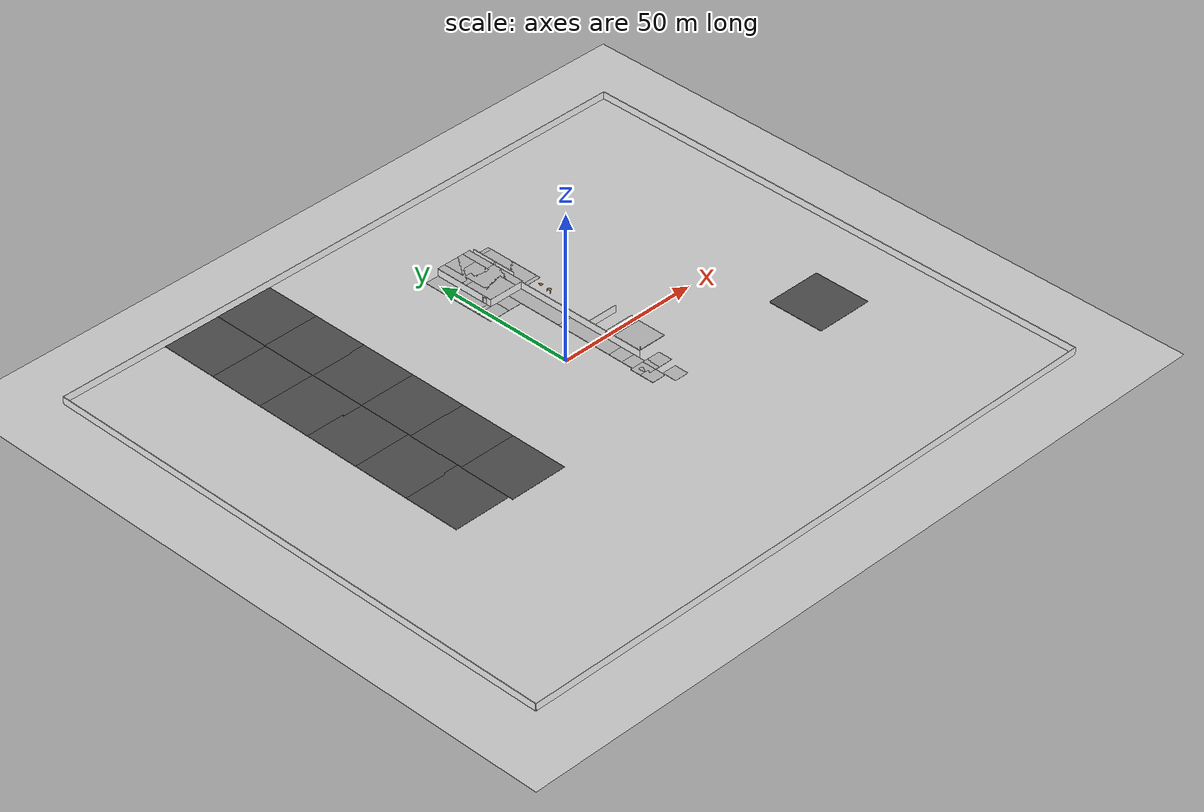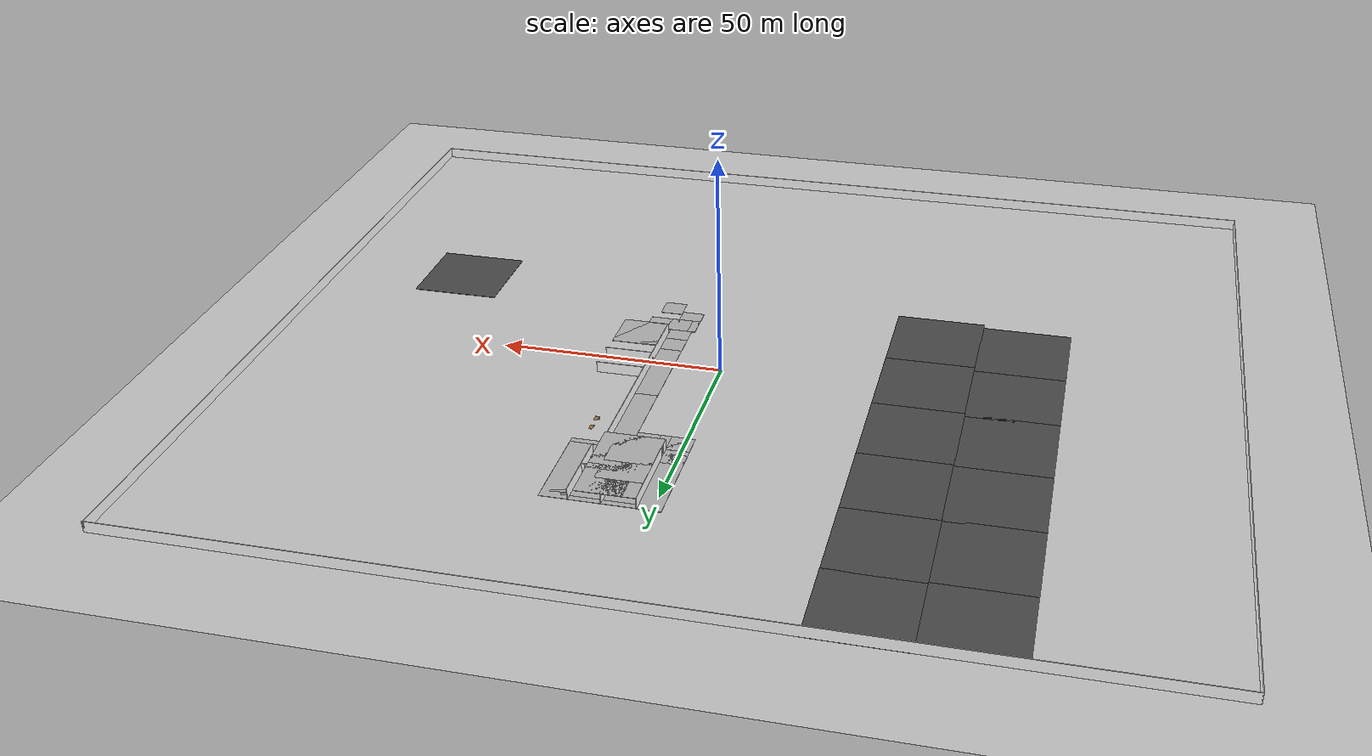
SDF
<sdf version="1.6">
 <world name="default">
  <model name="borders_0">
   <pose>-4.565 -7.31339 0 0 -0 0</pose>
   <link name="Wall_60">
    <collision name="Wall_60_Collision">
     <geometry><box><size>185.25 0.15 2.5</size></box></geometry>
     <pose>0 0 1.25 0 -0 0</pose>
    </collision>
    <visual name="Wall_60_Visual">
     <pose>0 0 1.25 0 -0 0</pose>
     <geometry><box><size>185.25 0.15 2.5</size></box></geometry>
     <material>
      <script>
       <uri>model://office_env/materials/scripts</uri>
       <uri>model://office_env/materials/textures</uri>
       <name>wall</name>
      </script>
      <ambient>1 1 1 1</ambient>
     </material>
    </visual>
    <pose>107.175 0 0 0 0 -1.5708</pose>
   </link>
   <link name="Wall_61">
    <collision name="Wall_61_Collision">
     <geometry><box><size>214.75 0.15 2.5</size></box></geometry>
     <pose>0 0 1.25 0 -0 0</pose>
    </collision>
    <visual name="Wall_61_Visual">
     <pose>0 0 1.25 0 -0 0</pose>
     <geometry><box><size>214.75 0.15 2.5</size></box></geometry>
     <material>
      <script>
       <uri>model://office_env/materials/scripts</uri>
       <uri>model://office_env/materials/textures</uri>
       <name>wall</name>
      </script>
      <ambient>1 1 1 1</ambient>
     </material>
    </visual>
    <pose>-0.124995 -92.55 0 0 -0 3.14159</pose>
   </link>
   <link name="Wall_62">
    <collision name="Wall_62_Collision">
     <geometry><box><size>185.25 0.15 2.5</size></box></geometry>
     <pose>0 0 1.25 0 -0 0</pose>
    </collision>
    <visual name="Wall_62_Visual">
     <pose>0 0 1.25 0 -0 0</pose>
     <geometry><box><size>185.25 0.15 2.5</size></box></geometry>
     <material>
      <script>
       <uri>model://office_env/materials/scripts</uri>
       <uri>model://office_env/materials/textures</uri>
       <name>wall</name>
      </script>
      <ambient>1 1 1 1</ambient>
     </material>
    </visual>
    <pose>-107.425 0 0 0 -0 1.5708</pose>
   </link>
   <link name="Wall_64">
    <collision name="Wall_64_Collision">
     <geometry><box><size>215 0.15 2.5</size></box></geometry>
     <pose>0 0 1.25 0 -0 0</pose>
    </collision>
    <visual name="Wall_64_Visual">
     <pose>0 0 1.25 0 -0 0</pose>
     <geometry><box><size>215 0.15 2.5</size></box></geometry>
     <material>
      <script>
       <uri>model://office_env/materials/scripts</uri>
       <uri>model://office_env/materials/textures</uri>
       <name>wall</name>
      </script>
      <ambient>1 1 1 1</ambient>
     </material>
    </visual>
    <pose>5e-06 92.55 0 0 -0 0</pose>
   </link>
   <static>1</static>
  </model>
  <model name="mainoffice">
   <pose>42.7555 15.4488 0 0 -0 0</pose>
   <link name="Wall_125">
    <collision name="Wall_125_Collision">
     <geometry><box><size>4.25 0.15 2.5</size></box></geometry>
     <pose>0 0 1.25 0 -0 0</pose>
    </collision>
    <visual name="Wall_125_Visual">
     <pose>0 0 1.25 0 -0 0</pose>
     <geometry><box><size>4.25 0.15 2.5</size></box></geometry>
     <material>
      <script>
       <uri>model://office_env/materials/scripts</uri>
       <uri>model://office_env/materials/textures</uri>
       <name>wall</name>
      </script>
      <ambient>1 1 1 1</ambient>
     </material>
    </visual>
    <pose>-30.1665 27.2379 0 0 -0 3.14159</pose>
   </link>
   <link name="Wall_126">
    <pose>-32.2165 33.1629 0 0 -0 1.5708</pose>
    <visual name="Wall_126_Visual_0">
     <pose>-5.66049 0 1.25 0 -0 0</pose>
     <geometry><box><size>0.679016 0.15 2.5</size></box></geometry>
     <material>
      <script>
       <uri>model://office_env/materials/scripts</uri>
       <uri>model://office_env/materials/textures</uri>
       <name>wall</name>
      </script>
      <ambient>1 1 1 1</ambient>
     </material>
    </visual>
    <collision name="Wall_126_Collision_0">
     <geometry><box><size>0.679016 0.15 2.5</size></box></geometry>
     <pose>-5.66049 0 1.25 0 -0 0</pose>
    </collision>
    <visual name="Wall_126_Visual_1">
     <pose>1.08951 0 1.25 0 -0 0</pose>
     <geometry><box><size>9.82098 0.15 2.5</size></box></geometry>
     <material>
      <script>
       <uri>model://office_env/materials/scripts</uri>
       <uri>model://office_env/materials/textures</uri>
       <name>wall</name>
      </script>
      <ambient>1 1 1 1</ambient>
     </material>
    </visual>
    <collision name="Wall_126_Collision_1">
     <geometry><box><size>9.82098 0.15 2.5</size></box></geometry>
     <pose>1.08951 0 1.25 0 -0 0</pose>
    </collision>
    <visual name="Wall_126_Visual_2">
     <pose>-4.57098 0 2.25 0 -0 0</pose>
     <geometry><box><size>1.5 0.15 0.5</size></box></geometry>
     <material>
      <script>
       <uri>model://office_env/materials/scripts</uri>
       <uri>model://office_env/materials/textures</uri>
       <name>wall</name>
      </script>
      <ambient>1 1 1 1</ambient>
     </material>
    </visual>
    <collision name="Wall_126_Collision_2">
     <geometry><box><size>1.5 0.15 0.5</size></box></geometry>
     <pose>-4.57098 0 2.25 0 -0 0</pose>
    </collision>
   </link>
   <link name="Wall_128">
    <collision name="Wall_128_Collision">
     <geometry><box><size>0.25 0.15 2.5</size></box></geometry>
     <pose>0 0 1.25 0 -0 0</pose>
    </collision>
    <visual name="Wall_128_Visual">
     <pose>0 0 1.25 0 -0 0</pose>
     <geometry><box><size>0.25 0.15 2.5</size></box></geometry>
     <material>
      <script>
       <uri>model://office_env/materials/scripts</uri>
       <uri>model://office_env/materials/textures</uri>
       <name>wall</name>
      </script>
      <ambient>1 1 1 1</ambient>
     </material>
    </visual>
    <pose>-32.2165 39.1379 0 0 -0 1.5708</pose>
   </link>
   <link name="Wall_130">
    <pose>-28.8573 30.0928 0 0 -0 0</pose>
    <visual name="Wall_130_Visual_0">
     <pose>-1.12067 0 1.25 0 -0 0</pose>
     <geometry><box><size>4.75866 0.15 2.5</size></box></geometry>
     <material>
      <script>
       <uri>model://office_env/materials/scripts</uri>
       <uri>model://office_env/materials/textures</uri>
       <name>wall</name>
      </script>
      <ambient>1 1 1 1</ambient>
     </material>
    </visual>
    <collision name="Wall_130_Collision_0">
     <geometry><box><size>4.75866 0.15 2.5</size></box></geometry>
     <pose>-1.12067 0 1.25 0 -0 0</pose>
    </collision>
    <visual name="Wall_130_Visual_1">
     <pose>3.12933 0 1.25 0 -0 0</pose>
     <geometry><box><size>0.741337 0.15 2.5</size></box></geometry>
     <material>
      <script>
       <uri>model://office_env/materials/scripts</uri>
       <uri>model://office_env/materials/textures</uri>
       <name>wall</name>
      </script>
      <ambient>1 1 1 1</ambient>
     </material>
    </visual>
    <collision name="Wall_130_Collision_1">
     <geometry><box><size>0.741337 0.15 2.5</size></box></geometry>
     <pose>3.12933 0 1.25 0 -0 0</pose>
    </collision>
    <visual name="Wall_130_Visual_2">
     <pose>2.00866 0 2.25 0 -0 0</pose>
     <geometry><box><size>1.5 0.15 0.5</size></box></geometry>
     <material>
      <script>
       <uri>model://office_env/materials/scripts</uri>
       <uri>model://office_env/materials/textures</uri>
       <name>wall</name>
      </script>
      <ambient>1 1 1 1</ambient>
     </material>
    </visual>
    <collision name="Wall_130_Collision_2">
     <geometry><box><size>1.5 0.15 0.5</size></box></geometry>
     <pose>2.00866 0 2.25 0 -0 0</pose>
    </collision>
   </link>
   <link name="Wall_131">
    <collision name="Wall_131_Collision">
     <geometry><box><size>7.5 0.15 2.5</size></box></geometry>
     <pose>0 0 1.25 0 -0 0</pose>
    </collision>
    <visual name="Wall_131_Visual">
     <pose>0 0 1.25 0 -0 0</pose>
     <geometry><box><size>7.5 0.15 2.5</size></box></geometry>
     <material>
      <script>
       <uri>model://office_env/materials/scripts</uri>
       <uri>model://office_env/materials/textures</uri>
       <name>wall</name>
      </script>
      <ambient>1 1 1 1</ambient>
     </material>
    </visual>
    <pose>-25.4323 26.4178 0 0 0 -1.5708</pose>
   </link>
   <link name="Wall_133">
    <collision name="Wall_133_Collision">
     <geometry><box><size>4.75 0.15 2.5</size></box></geometry>
     <pose>0 0 1.25 0 -0 0</pose>
    </collision>
    <visual name="Wall_133_Visual">
     <pose>0 0 1.25 0 -0 0</pose>
     <geometry><box><size>4.75 0.15 2.5</size></box></geometry>
     <material>
      <script>
       <uri>model://office_env/materials/scripts</uri>
       <uri>model://office_env/materials/textures</uri>
       <name>wall</name>
      </script>
      <ambient>1 1 1 1</ambient>
     </material>
    </visual>
    <pose>-28.1164 24.9379 0 0 0 -1.5708</pose>
   </link>
   <link name="Wall_135">
    <collision name="Wall_135_Collision">
     <geometry><box><size>9.25 0.15 2.5</size></box></geometry>
     <pose>0 0 1.25 0 -0 0</pose>
    </collision>
    <visual name="Wall_135_Visual">
     <pose>0 0 1.25 0 -0 0</pose>
     <geometry><box><size>9.25 0.15 2.5</size></box></geometry>
     <material>
      <script>
       <uri>model://office_env/materials/scripts</uri>
       <uri>model://office_env/materials/textures</uri>
       <name>wall</name>
      </script>
      <ambient>1 1 1 1</ambient>
     </material>
    </visual>
    <pose>-25.4323 34.6428 0 0 -0 1.5708</pose>
   </link>
   <link name="Wall_35">
    <collision name="Wall_35_Collision">
     <geometry><box><size>47.25 0.15 2.5</size></box></geometry>
     <pose>0 0 1.25 0 -0 0</pose>
    </collision>
    <visual name="Wall_35_Visual">
     <pose>0 0 1.25 0 -0 0</pose>
     <geometry><box><size>47.25 0.15 2.5</size></box></geometry>
     <material>
      <script>
       <uri>model://office_env/materials/scripts</uri>
       <uri>model://office_env/materials/textures</uri>
       <name>wall</name>
      </script>
      <ambient>1 1 1 1</ambient>
     </material>
    </visual>
    <pose>-27.0991 -5.575 0 0 -0 1.5708</pose>
   </link>
   <link name="Wall_36">
    <collision name="Wall_36_Collision">
     <geometry><box><size>12.5 0.15 2.5</size></box></geometry>
     <pose>0 0 1.25 0 -0 0</pose>
    </collision>
    <visual name="Wall_36_Visual">
     <pose>0 0 1.25 0 -0 0</pose>
     <geometry><box><size>12.5 0.15 2.5</size></box></geometry>
     <material>
      <script>
       <uri>model://office_env/materials/scripts</uri>
       <uri>model://office_env/materials/textures</uri>
       <name>wall</name>
      </script>
      <ambient>1 1 1 1</ambient>
     </material>
    </visual>
    <pose>-33.2741 17.975 0 0 -0 3.14159</pose>
   </link>
   <link name="Wall_37">
    <pose>-39.4491 28.65 0 0 -0 1.5708</pose>
    <visual name="Wall_37_Visual_0">
     <pose>-9.83172 0 1.25 0 -0 0</pose>
     <geometry><box><size>1.83655 0.15 2.5</size></box></geometry>
     <material>
      <script>
       <uri>model://office_env/materials/scripts</uri>
       <uri>model://office_env/materials/textures</uri>
       <name>wall</name>
      </script>
      <ambient>1 1 1 1</ambient>
     </material>
    </visual>
    <collision name="Wall_37_Collision_0">
     <geometry><box><size>1.83655 0.15 2.5</size></box></geometry>
     <pose>-9.83172 0 1.25 0 -0 0</pose>
    </collision>
    <visual name="Wall_37_Visual_1">
     <pose>1.66828 0 1.25 0 -0 0</pose>
     <geometry><box><size>18.1634 0.15 2.5</size></box></geometry>
     <material>
      <script>
       <uri>model://office_env/materials/scripts</uri>
       <uri>model://office_env/materials/textures</uri>
       <name>wall</name>
      </script>
      <ambient>1 1 1 1</ambient>
     </material>
    </visual>
    <collision name="Wall_37_Collision_1">
     <geometry><box><size>18.1634 0.15 2.5</size></box></geometry>
     <pose>1.66828 0 1.25 0 -0 0</pose>
    </collision>
    <visual name="Wall_37_Visual_2">
     <pose>-8.16345 0 2.25 0 -0 0</pose>
     <geometry><box><size>1.5 0.15 0.5</size></box></geometry>
     <material>
      <script>
       <uri>model://office_env/materials/scripts</uri>
       <uri>model://office_env/materials/textures</uri>
       <name>wall</name>
      </script>
      <ambient>1 1 1 1</ambient>
     </material>
    </visual>
    <collision name="Wall_37_Collision_2">
     <geometry><box><size>1.5 0.15 0.5</size></box></geometry>
     <pose>-8.16345 0 2.25 0 -0 0</pose>
    </collision>
   </link>
   <link name="Wall_69">
    <collision name="Wall_69_Collision">
     <geometry><box><size>10.75 0.15 2.5</size></box></geometry>
     <pose>0 0 1.25 0 -0 0</pose>
    </collision>
    <visual name="Wall_69_Visual">
     <pose>0 0 1.25 0 -0 0</pose>
     <geometry><box><size>10.75 0.15 2.5</size></box></geometry>
     <material>
      <script>
       <uri>model://office_env/materials/scripts</uri>
       <uri>model://office_env/materials/textures</uri>
       <name>wall</name>
      </script>
      <ambient>1 1 1 1</ambient>
     </material>
    </visual>
    <pose>-21.8396 -15.8176 0 0 -0 3.14159</pose>
   </link>
   <link name="Wall_71">
    <collision name="Wall_71_Collision">
     <geometry><box><size>10.75 0.15 2.5</size></box></geometry>
     <pose>0 0 1.25 0 -0 0</pose>
    </collision>
    <visual name="Wall_71_Visual">
     <pose>0 0 1.25 0 -0 0</pose>
     <geometry><box><size>10.75 0.15 2.5</size></box></geometry>
     <material>
      <script>
       <uri>model://office_env/materials/scripts</uri>
       <uri>model://office_env/materials/textures</uri>
       <name>wall</name>
      </script>
      <ambient>1 1 1 1</ambient>
     </material>
    </visual>
    <pose>-21.7518 -9.17769 0 0 -0 3.14159</pose>
   </link>
   <static>1</static>
  </model>
  <model name="asphalt_plane_0">
   <static>1</static>
   <link name="link">
    <collision name="collision"><geometry><box><size>20 20 0.1</size></box></geometry></collision>
    <visual name="visual">
     <cast_shadows>0</cast_shadows>
     <geometry><box><size>20 20 0.1</size></box></geometry>
     <material>
      <script>
       <uri>model://asphalt_plane/materials/scripts</uri>
       <uri>model://asphalt_plane/materials/textures</uri>
       <name>vrc/asphalt</name>
      </script>
     </material>
    </visual>
   </link>
   <pose>-64.5165 75.1071 0 0 -0 0</pose>
  </model>
  <model name="asphalt_plane_1">
   <static>1</static>
   <link name="link">
    <collision name="collision"><geometry><box><size>20 20 0.1</size></box></geometry></collision>
    <visual name="visual">
     <cast_shadows>0</cast_shadows>
     <geometry><box><size>20 20 0.1</size></box></geometry>
     <material>
      <script>
       <uri>model://asphalt_plane/materials/scripts</uri>
       <uri>model://asphalt_plane/materials/textures</uri>
       <name>vrc/asphalt</name>
      </script>
     </material>
    </visual>
   </link>
   <pose>-64.552 55.1303 0 0 -0 0</pose>
  </model>
  <model name="asphalt_plane_2">
   <static>1</static>
   <link name="link">
    <collision name="collision"><geometry><box><size>20 20 0.1</size></box></geometry></collision>
    <visual name="visual">
     <cast_shadows>0</cast_shadows>
     <geometry><box><size>20 20 0.1</size></box></geometry>
     <material>
      <script>
       <uri>model://asphalt_plane/materials/scripts</uri>
       <uri>model://asphalt_plane/materials/textures</uri>
       <name>vrc/asphalt</name>
      </script>
     </material>
    </visual>
   </link>
   <pose>-64.5299 35.7195 0 0 -0 0</pose>
  </model>
  <model name="asphalt_plane_3">
   <static>1</static>
   <link name="link">
    <collision name="collision"><geometry><box><size>20 20 0.1</size></box></geometry></collision>
    <visual name="visual">
     <cast_shadows>0</cast_shadows>
     <geometry><box><size>20 20 0.1</size></box></geometry>
     <material>
      <script>
       <uri>model://asphalt_plane/materials/scripts</uri>
       <uri>model://asphalt_plane/materials/textures</uri>
       <name>vrc/asphalt</name>
      </script>
     </material>
    </visual>
   </link>
   <pose>-64.5166 16.3108 0 0 -0 0</pose>
  </model>
  <model name="asphalt_plane_4">
   <static>1</static>
   <link name="link">
    <collision name="collision"><geometry><box><size>20 20 0.1</size></box></geometry></collision>
    <visual name="visual">
     <cast_shadows>0</cast_shadows>
     <geometry><box><size>20 20 0.1</size></box></geometry>
     <material>
      <script>
       <uri>model://asphalt_plane/materials/scripts</uri>
       <uri>model://asphalt_plane/materials/textures</uri>
       <name>vrc/asphalt</name>
      </script>
     </material>
    </visual>
   </link>
   <pose>-64.5183 -2.94145 0 0 -0 0</pose>
  </model>
  <model name="asphalt_plane_5">
   <static>1</static>
   <link name="link">
    <collision name="collision"><geometry><box><size>20 20 0.1</size></box></geometry></collision>
    <visual name="visual">
     <cast_shadows>0</cast_shadows>
     <geometry><box><size>20 20 0.1</size></box></geometry>
     <material>
      <script>
       <uri>model://asphalt_plane/materials/scripts</uri>
       <uri>model://asphalt_plane/materials/textures</uri>
       <name>vrc/asphalt</name>
      </script>
     </material>
    </visual>
   </link>
   <pose>-64.5294 -22.3652 0 0 -0 0</pose>
  </model>
  <model name="asphalt_plane_7">
   <static>1</static>
   <link name="link">
    <collision name="collision"><geometry><box><size>20 20 0.1</size></box></geometry></collision>
    <visual name="visual">
     <cast_shadows>0</cast_shadows>
     <geometry><box><size>20 20 0.1</size></box></geometry>
     <material>
      <script>
       <uri>model://asphalt_plane/materials/scripts</uri>
       <uri>model://asphalt_plane/materials/textures</uri>
       <name>vrc/asphalt</name>
      </script>
     </material>
    </visual>
   </link>
   <pose>-44.6095 75.2915 0 0 -0 0</pose>
  </model>
  <model name="asphalt_plane_8">
   <static>1</static>
   <link name="link">
    <collision name="collision"><geometry><box><size>20 20 0.1</size></box></geometry></collision>
    <visual name="visual">
     <cast_shadows>0</cast_shadows>
     <geometry><box><size>20 20 0.1</size></box></geometry>
     <material>
      <script>
       <uri>model://asphalt_plane/materials/scripts</uri>
       <uri>model://asphalt_plane/materials/textures</uri>
       <name>vrc/asphalt</name>
      </script>
     </material>
    </visual>
   </link>
   <pose>-44.6396 55.5127 0 0 -0 0</pose>
  </model>
  <model name="asphalt_plane_9">
   <static>1</static>
   <link name="link">
    <collision name="collision"><geometry><box><size>20 20 0.1</size></box></geometry></collision>
    <visual name="visual">
     <cast_shadows>0</cast_shadows>
     <geometry><box><size>20 20 0.1</size></box></geometry>
     <material>
      <script>
       <uri>model://asphalt_plane/materials/scripts</uri>
       <uri>model://asphalt_plane/materials/textures</uri>
       <name>vrc/asphalt</name>
      </script>
     </material>
    </visual>
   </link>
   <pose>-44.6546 35.8741 0 0 -0 0</pose>
  </model>
  <model name="asphalt_plane_10">
   <static>1</static>
   <link name="link">
    <collision name="collision"><geometry><box><size>20 20 0.1</size></box></geometry></collision>
    <visual name="visual">
     <cast_shadows>0</cast_shadows>
     <geometry><box><size>20 20 0.1</size></box></geometry>
     <material>
      <script>
       <uri>model://asphalt_plane/materials/scripts</uri>
       <uri>model://asphalt_plane/materials/textures</uri>
       <name>vrc/asphalt</name>
      </script>
     </material>
    </visual>
   </link>
   <pose>-44.653 15.9007 0 0 -0 0</pose>
  </model>
  <model name="asphalt_plane_11">
   <static>1</static>
   <link name="link">
    <collision name="collision"><geometry><box><size>20 20 0.1</size></box></geometry></collision>
    <visual name="visual">
     <cast_shadows>0</cast_shadows>
     <geometry><box><size>20 20 0.1</size></box></geometry>
     <material>
      <script>
       <uri>model://asphalt_plane/materials/scripts</uri>
       <uri>model://asphalt_plane/materials/textures</uri>
       <name>vrc/asphalt</name>
      </script>
     </material>
    </visual>
   </link>
   <pose>-44.6674 -3.87186 0 0 -0 0</pose>
  </model>
  <model name="asphalt_plane_12">
   <static>1</static>
   <link name="link">
    <collision name="collision"><geometry><box><size>20 20 0.1</size></box></geometry></collision>
    <visual name="visual">
     <cast_shadows>0</cast_shadows>
     <geometry><box><size>20 20 0.1</size></box></geometry>
     <material>
      <script>
       <uri>model://asphalt_plane/materials/scripts</uri>
       <uri>model://asphalt_plane/materials/textures</uri>
       <name>vrc/asphalt</name>
      </script>
     </material>
    </visual>
   </link>
   <pose>-44.6971 -23.8447 0 0 -0 0</pose>
  </model>
  <model name="asphalt_plane">
   <static>1</static>
   <link name="link">
    <collision name="collision"><geometry><box><size>20 20 0.1</size></box></geometry></collision>
    <visual name="visual">
     <cast_shadows>0</cast_shadows>
     <geometry><box><size>20 20 0.1</size></box></geometry>
     <material>
      <script>
       <uri>model://asphalt_plane/materials/scripts</uri>
       <uri>model://asphalt_plane/materials/textures</uri>
       <name>vrc/asphalt</name>
      </script>
     </material>
    </visual>
   </link>
   <pose>70.7475 -31.5972 0 0 -0 0</pose>
  </model>
  <model name="table">
   <static>0</static>
   <link name="link">
    <collision name="surface">
     <pose>0 0 1 0 -0 0</pose>
     <geometry><box><size>1.5 0.8 0.03</size></box></geometry>
     <surface><friction><ode><mu>0.6</mu><mu2>0.6</mu2></ode></friction></surface>
    </collision>
    <visual name="visual1">
     <pose>0 0 1 0 -0 0</pose>
     <geometry><box><size>1.4 0.8 0.04</size></box></geometry>
     <material>
      <script><uri>file://media/materials/scripts/gazebo.material</uri><name>Gazebo/Wood</name></script>
     </material>
    </visual>
    <collision name="front_left_leg">
     <pose>0.68 0.38 0.5 0 -0 0</pose>
     <geometry><cylinder><radius>0.02</radius><length>1</length></cylinder></geometry>
    </collision>
    <visual name="front_left_leg">
     <pose>0.68 0.38 0.5 0 -0 0</pose>
     <geometry><cylinder><radius>0.02</radius><length>1</length></cylinder></geometry>
     <material>
      <script>
       <uri>model://office_env/materials/scripts</uri>
       <uri>model://office_env/materials/textures</uri>
       <name>wall</name>
      </script>
     </material>
    </visual>
    <collision name="front_right_leg">
     <pose>0.68 -0.38 0.5 0 -0 0</pose>
     <geometry><cylinder><radius>0.02</radius><length>1</length></cylinder></geometry>
    </collision>
    <visual name="front_right_leg">
     <pose>0.68 -0.38 0.5 0 -0 0</pose>
     <geometry><cylinder><radius>0.02</radius><length>1</length></cylinder></geometry>
     <material>
      <script>
       <uri>model://office_env/materials/scripts</uri>
       <uri>model://office_env/materials/textures</uri>
       <name>wall</name>
      </script>
     </material>
    </visual>
    <collision name="back_right_leg">
     <pose>-0.68 -0.38 0.5 0 -0 0</pose>
     <geometry><cylinder><radius>0.02</radius><length>1</length></cylinder></geometry>
    </collision>
    <visual name="back_right_leg">
     <pose>-0.68 -0.38 0.5 0 -0 0</pose>
     <geometry><cylinder><radius>0.02</radius><length>1</length></cylinder></geometry>
     <material>
      <script>
       <uri>model://office_env/materials/scripts</uri>
       <uri>model://office_env/materials/textures</uri>
       <name>wall</name>
      </script>
     </material>
    </visual>
    <collision name="back_left_leg">
     <pose>-0.68 0.38 0.5 0 -0 0</pose>
     <geometry><cylinder><radius>0.02</radius><length>1</length></cylinder></geometry>
    </collision>
    <visual name="back_left_leg">
     <pose>-0.68 0.38 0.5 0 -0 0</pose>
     <geometry><cylinder><radius>0.02</radius><length>1</length></cylinder></geometry>
     <material>
      <script>
       <uri>model://office_env/materials/scripts</uri>
       <uri>model://office_env/materials/textures</uri>
       <name>wall</name>
      </script>
     </material>
    </visual>
    <inertial>
     <inertia><ixx>1</ixx><ixy>0</ixy><ixz>0</ixz><iyy>1</iyy><iyz>0</iyz><izz>1</izz></inertia>
     <mass>1</mass>
    </inertial>
   </link>
   <pose>6.75899 49.9498 0.034999 0 -0 0</pose>
  </model>
  <model name="table_3">
   <static>0</static>
   <link name="link">
    <collision name="surface">
     <pose>0 0 1 0 -0 0</pose>
     <geometry><box><size>1.5 0.8 0.03</size></box></geometry>
     <surface><friction><ode><mu>0.6</mu><mu2>0.6</mu2></ode></friction></surface>
    </collision>
    <visual name="visual1">
     <pose>0 0 1 0 -0 0</pose>
     <geometry><box><size>1.4 0.8 0.04</size></box></geometry>
     <material>
      <script><uri>file://media/materials/scripts/gazebo.material</uri><name>Gazebo/Wood</name></script>
     </material>
    </visual>
    <collision name="front_left_leg">
     <pose>0.68 0.38 0.5 0 -0 0</pose>
     <geometry><cylinder><radius>0.02</radius><length>1</length></cylinder></geometry>
    </collision>
    <visual name="front_left_leg">
     <pose>0.68 0.38 0.5 0 -0 0</pose>
     <geometry><cylinder><radius>0.02</radius><length>1</length></cylinder></geometry>
     <material>
      <script>
       <uri>model://office_env/materials/scripts</uri>
       <uri>model://office_env/materials/textures</uri>
       <name>wall</name>
      </script>
     </material>
    </visual>
    <collision name="front_right_leg">
     <pose>0.68 -0.38 0.5 0 -0 0</pose>
     <geometry><cylinder><radius>0.02</radius><length>1</length></cylinder></geometry>
    </collision>
    <visual name="front_right_leg">
     <pose>0.68 -0.38 0.5 0 -0 0</pose>
     <geometry><cylinder><radius>0.02</radius><length>1</length></cylinder></geometry>
     <material>
      <script>
       <uri>model://office_env/materials/scripts</uri>
       <uri>model://office_env/materials/textures</uri>
       <name>wall</name>
      </script>
     </material>
    </visual>
    <collision name="back_right_leg">
     <pose>-0.68 -0.38 0.5 0 -0 0</pose>
     <geometry><cylinder><radius>0.02</radius><length>1</length></cylinder></geometry>
    </collision>
    <visual name="back_right_leg">
     <pose>-0.68 -0.38 0.5 0 -0 0</pose>
     <geometry><cylinder><radius>0.02</radius><length>1</length></cylinder></geometry>
     <material>
      <script>
       <uri>model://office_env/materials/scripts</uri>
       <uri>model://office_env/materials/textures</uri>
       <name>wall</name>
      </script>
     </material>
    </visual>
    <collision name="back_left_leg">
     <pose>-0.68 0.38 0.5 0 -0 0</pose>
     <geometry><cylinder><radius>0.02</radius><length>1</length></cylinder></geometry>
    </collision>
    <visual name="back_left_leg">
     <pose>-0.68 0.38 0.5 0 -0 0</pose>
     <geometry><cylinder><radius>0.02</radius><length>1</length></cylinder></geometry>
     <material>
      <script>
       <uri>model://office_env/materials/scripts</uri>
       <uri>model://office_env/materials/textures</uri>
       <name>wall</name>
      </script>
     </material>
    </visual>
    <inertial>
     <inertia><ixx>1</ixx><ixy>0</ixy><ixz>0</ixz><iyy>1</iyy><iyz>0</iyz><izz>1</izz></inertia>
     <mass>1</mass>
    </inertial>
   </link>
   <pose>20.1295 30.0365 0.034999 0 0 -1.58064</pose>
  </model>
  <model name="table_3_clone">
   <static>0</static>
   <link name="link">
    <collision name="surface">
     <pose>0 0 1 0 -0 0</pose>
     <geometry><box><size>1.5 0.8 0.03</size></box></geometry>
     <surface><friction><ode><mu>0.6</mu><mu2>0.6</mu2></ode></friction></surface>
    </collision>
    <visual name="visual1">
     <pose>0 0 1 0 -0 0</pose>
     <geometry><box><size>1.4 0.8 0.04</size></box></geometry>
     <material>
      <script><uri>file://media/materials/scripts/gazebo.material</uri><name>Gazebo/Wood</name></script>
     </material>
    </visual>
    <collision name="front_left_leg">
     <pose>0.68 0.38 0.5 0 -0 0</pose>
     <geometry><cylinder><radius>0.02</radius><length>1</length></cylinder></geometry>
    </collision>
    <visual name="front_left_leg">
     <pose>0.68 0.38 0.5 0 -0 0</pose>
     <geometry><cylinder><radius>0.02</radius><length>1</length></cylinder></geometry>
     <material>
      <script>
       <uri>model://office_env/materials/scripts</uri>
       <uri>model://office_env/materials/textures</uri>
       <name>wall</name>
      </script>
     </material>
    </visual>
    <collision name="front_right_leg">
     <pose>0.68 -0.38 0.5 0 -0 0</pose>
     <geometry><cylinder><radius>0.02</radius><length>1</length></cylinder></geometry>
    </collision>
    <visual name="front_right_leg">
     <pose>0.68 -0.38 0.5 0 -0 0</pose>
     <geometry><cylinder><radius>0.02</radius><length>1</length></cylinder></geometry>
     <material>
      <script>
       <uri>model://office_env/materials/scripts</uri>
       <uri>model://office_env/materials/textures</uri>
       <name>wall</name>
      </script>
     </material>
    </visual>
    <collision name="back_right_leg">
     <pose>-0.68 -0.38 0.5 0 -0 0</pose>
     <geometry><cylinder><radius>0.02</radius><length>1</length></cylinder></geometry>
    </collision>
    <visual name="back_right_leg">
     <pose>-0.68 -0.38 0.5 0 -0 0</pose>
     <geometry><cylinder><radius>0.02</radius><length>1</length></cylinder></geometry>
     <material>
      <script>
       <uri>model://office_env/materials/scripts</uri>
       <uri>model://office_env/materials/textures</uri>
       <name>wall</name>
      </script>
     </material>
    </visual>
    <collision name="back_left_leg">
     <pose>-0.68 0.38 0.5 0 -0 0</pose>
     <geometry><cylinder><radius>0.02</radius><length>1</length></cylinder></geometry>
    </collision>
    <visual name="back_left_leg">
     <pose>-0.68 0.38 0.5 0 -0 0</pose>
     <geometry><cylinder><radius>0.02</radius><length>1</length></cylinder></geometry>
     <material>
      <script>
       <uri>model://office_env/materials/scripts</uri>
       <uri>model://office_env/materials/textures</uri>
       <name>wall</name>
      </script>
     </material>
    </visual>
    <inertial>
     <inertia><ixx>1</ixx><ixy>0</ixy><ixz>0</ixz><iyy>1</iyy><iyz>0</iyz><izz>1</izz></inertia>
     <mass>1</mass>
    </inertial>
   </link>
   <pose>20.1673 26.4749 0.034999 0 0 -1.58064</pose>
  </model>
  <model name="Floor_40">
   <link name="main">
    <pose>0 0 0.01 0 -0 0</pose>
    <collision name="main_Collision"><geometry><box><size>5 5 0.05</size></box></geometry></collision>
    <visual name="main_Visual">
     <geometry><box><size>5 5 0.05</size></box></geometry>
     <material>
      <script>
       <uri>model://Floor_verysmall/materials/scripts</uri>
       <uri>model://Floor_verysmall/materials/textures</uri>
       <name>floor</name>
      </script>
     </material>
    </visual>
   </link>
   <static>1</static>
   <pose>17.456 -25.8689 0 0 -0 0</pose>
  </model>
  <model name="Floor_50">
   <link name="main">
    <pose>0 0 0.01 0 -0 0</pose>
    <collision name="main_Collision"><geometry><box><size>20 20 0.05</size></box></geometry></collision>
    <visual name="main_Visual">
     <geometry><box><size>20 20 0.05</size></box></geometry>
     <material>
      <script>
       <uri>model://Floor_medium/materials/scripts</uri>
       <uri>model://Floor_medium/materials/textures</uri>
       <name>floor</name>
      </script>
     </material>
    </visual>
   </link>
   <static>1</static>
   <pose>13.27 44.6882 0 0 -0 0</pose>
  </model>
  <model name="Floor_51">
   <link name="main">
    <pose>0 0 0.01 0 -0 0</pose>
    <collision name="main_Collision"><geometry><box><size>20 20 0.05</size></box></geometry></collision>
    <visual name="main_Visual">
     <geometry><box><size>20 20 0.05</size></box></geometry>
     <material>
      <script>
       <uri>model://Floor_medium/materials/scripts</uri>
       <uri>model://Floor_medium/materials/textures</uri>
       <name>floor</name>
      </script>
     </material>
    </visual>
   </link>
   <static>1</static>
   <pose>13.3202 43.3668 0 0 -0 0</pose>
  </model>
  <model name="my_ground_plane">
   <static>1</static>
   <link name="link">
    <collision name="collision">
     <geometry><plane><normal>0 0 1</normal><size>300 300</size></plane></geometry>
     <surface><friction><ode><mu>100</mu><mu2>50</mu2></ode></friction></surface>
    </collision>
    <visual name="visual">
     <cast_shadows>0</cast_shadows>
     <geometry><plane><normal>0 0 1</normal><size>300 300</size></plane></geometry>
     <material>
      <script>
       <uri>model://grass_1/materials/scripts/my_ground_plane.material</uri>
       <name>MyGroundPlane/Image</name>
      </script>
     </material>
    </visual>
   </link>
   <pose>-0.163313 -0.271667 0 0 -0 0</pose>
  </model>
  <model name="outdoor_plane_18">
   <static>1</static>
   <link name="link">
    <collision name="collision"><geometry><box><size>5 20 0.1</size></box></geometry></collision>
    <visual name="visual">
     <cast_shadows>0</cast_shadows>
     <geometry><box><size>5 20 0.1</size></box></geometry>
     <material>
      <script>
       <uri>model://outdoor_plane/materials/scripts</uri>
       <uri>model://outdoor_plane/materials/textures</uri>
       <name>outds/Image</name>
      </script>
     </material>
    </visual>
   </link>
   <pose>13.0879 23.3949 0 0 -0 0</pose>
  </model>
  <model name="outdoor_plane_19">
   <static>1</static>
   <link name="link">
    <collision name="collision"><geometry><box><size>5 20 0.1</size></box></geometry></collision>
    <visual name="visual">
     <cast_shadows>0</cast_shadows>
     <geometry><box><size>5 20 0.1</size></box></geometry>
     <material>
      <script>
       <uri>model://outdoor_plane/materials/scripts</uri>
       <uri>model://outdoor_plane/materials/textures</uri>
       <name>outds/Image</name>
      </script>
     </material>
    </visual>
   </link>
   <pose>13.0738 3.43151 0 0 -0 0</pose>
  </model>
  <model name="outdoor_plane_27">
   <static>1</static>
   <link name="link">
    <collision name="collision"><geometry><box><size>5 5 0.1</size></box></geometry></collision>
    <visual name="visual">
     <cast_shadows>0</cast_shadows>
     <geometry><box><size>5 5 0.1</size></box></geometry>
     <material>
      <script>
       <uri>model://outdoor_planesmall/materials/scripts</uri>
       <uri>model://outdoor_planesmall/materials/textures</uri>
       <name>outdss/Image</name>
      </script>
     </material>
    </visual>
   </link>
   <pose>18.8599 -18.2392 0 0 -0 0</pose>
  </model>
  <model name="outdoor_plane_28">
   <static>1</static>
   <link name="link">
    <collision name="collision"><geometry><box><size>5 5 0.1</size></box></geometry></collision>
    <visual name="visual">
     <cast_shadows>0</cast_shadows>
     <geometry><box><size>5 5 0.1</size></box></geometry>
     <material>
      <script>
       <uri>model://outdoor_planesmall/materials/scripts</uri>
       <uri>model://outdoor_planesmall/materials/textures</uri>
       <name>outdss/Image</name>
      </script>
     </material>
    </visual>
   </link>
   <pose>14.1258 -18.2496 0 0 -0 0</pose>
  </model>
  <model name="outdoor_plane_29">
   <static>1</static>
   <link name="link">
    <collision name="collision"><geometry><box><size>5 5 0.1</size></box></geometry></collision>
    <visual name="visual">
     <cast_shadows>0</cast_shadows>
     <geometry><box><size>5 5 0.1</size></box></geometry>
     <material>
      <script>
       <uri>model://outdoor_planesmall/materials/scripts</uri>
       <uri>model://outdoor_planesmall/materials/textures</uri>
       <name>outdss/Image</name>
      </script>
     </material>
    </visual>
   </link>
   <pose>12.3182 -18.2438 0 0 -0 0</pose>
  </model>
  <model name="outdoor_plane_30">
   <static>1</static>
   <link name="link">
    <collision name="collision"><geometry><box><size>5 5 0.1</size></box></geometry></collision>
    <visual name="visual">
     <cast_shadows>0</cast_shadows>
     <geometry><box><size>5 5 0.1</size></box></geometry>
     <material>
      <script>
       <uri>model://outdoor_planesmall/materials/scripts</uri>
       <uri>model://outdoor_planesmall/materials/textures</uri>
       <name>outdss/Image</name>
      </script>
     </material>
    </visual>
   </link>
   <pose>12.311 -21.9753 0 0 -0 0</pose>
  </model>
  <model name="outdoor_plane_31">
   <static>1</static>
   <link name="link">
    <collision name="collision"><geometry><box><size>5 5 0.1</size></box></geometry></collision>
    <visual name="visual">
     <cast_shadows>0</cast_shadows>
     <geometry><box><size>5 5 0.1</size></box></geometry>
     <material>
      <script>
       <uri>model://outdoor_planesmall/materials/scripts</uri>
       <uri>model://outdoor_planesmall/materials/textures</uri>
       <name>outdss/Image</name>
      </script>
     </material>
    </visual>
   </link>
   <pose>13.0578 -9.06664 0 0 -0 0</pose>
  </model>
  <model name="outdoor_plane_32">
   <static>1</static>
   <link name="link">
    <collision name="collision"><geometry><box><size>5 5 0.1</size></box></geometry></collision>
    <visual name="visual">
     <cast_shadows>0</cast_shadows>
     <geometry><box><size>5 5 0.1</size></box></geometry>
     <material>
      <script>
       <uri>model://outdoor_planesmall/materials/scripts</uri>
       <uri>model://outdoor_planesmall/materials/textures</uri>
       <name>outdss/Image</name>
      </script>
     </material>
    </visual>
   </link>
   <pose>13.0735 -13.2628 0 0 -0 0</pose>
  </model>
  <model name="outdoor_plane_33">
   <static>1</static>
   <link name="link">
    <collision name="collision"><geometry><box><size>5 5 0.1</size></box></geometry></collision>
    <visual name="visual">
     <cast_shadows>0</cast_shadows>
     <geometry><box><size>5 5 0.1</size></box></geometry>
     <material>
      <script>
       <uri>model://outdoor_planesmall/materials/scripts</uri>
       <uri>model://outdoor_planesmall/materials/textures</uri>
       <name>outdss/Image</name>
      </script>
     </material>
    </visual>
   </link>
   <pose>8.10474 30.8535 0 0 -0 0</pose>
  </model>
  <model name="outdoor_plane_34">
   <static>1</static>
   <link name="link">
    <collision name="collision"><geometry><box><size>5 5 0.1</size></box></geometry></collision>
    <visual name="visual">
     <cast_shadows>0</cast_shadows>
     <geometry><box><size>5 5 0.1</size></box></geometry>
     <material>
      <script>
       <uri>model://outdoor_planesmall/materials/scripts</uri>
       <uri>model://outdoor_planesmall/materials/textures</uri>
       <name>outdss/Image</name>
      </script>
     </material>
    </visual>
   </link>
   <pose>3.18164 30.8566 0 0 -0 0</pose>
  </model>
  <model name="outdoor_plane_35">
   <static>1</static>
   <link name="link">
    <collision name="collision"><geometry><box><size>5 5 0.1</size></box></geometry></collision>
    <visual name="visual">
     <cast_shadows>0</cast_shadows>
     <geometry><box><size>5 5 0.1</size></box></geometry>
     <material>
      <script>
       <uri>model://outdoor_planesmall/materials/scripts</uri>
       <uri>model://outdoor_planesmall/materials/textures</uri>
       <name>outdss/Image</name>
      </script>
     </material>
    </visual>
   </link>
   <pose>0.821095 35.7571 0 0 -0 0</pose>
  </model>
  <model name="outdoor_plane_36">
   <static>1</static>
   <link name="link">
    <collision name="collision"><geometry><box><size>5 5 0.1</size></box></geometry></collision>
    <visual name="visual">
     <cast_shadows>0</cast_shadows>
     <geometry><box><size>5 5 0.1</size></box></geometry>
     <material>
      <script>
       <uri>model://outdoor_planesmall/materials/scripts</uri>
       <uri>model://outdoor_planesmall/materials/textures</uri>
       <name>outdss/Image</name>
      </script>
     </material>
    </visual>
   </link>
   <pose>0.830037 30.8668 0 0 -0 0</pose>
  </model>
  <model name="outdoor_plane_37">
   <static>1</static>
   <link name="link">
    <collision name="collision"><geometry><box><size>5 20 0.1</size></box></geometry></collision>
    <visual name="visual">
     <cast_shadows>0</cast_shadows>
     <geometry><box><size>5 20 0.1</size></box></geometry>
     <material>
      <script>
       <uri>model://outdoor_plane/materials/scripts</uri>
       <uri>model://outdoor_plane/materials/textures</uri>
       <name>outds/Image</name>
      </script>
     </material>
    </visual>
   </link>
   <pose>0.816783 44.8307 0 0 -0 0</pose>
  </model>
  <model name="Floor_3_clone_10_clone_6">
   <link name="main">
    <pose>0 0 0.01 0 -0 0</pose>
    <collision name="main_Collision"><geometry><box><size>10 10 0.05</size></box></geometry></collision>
    <visual name="main_Visual">
     <geometry><box><size>10 10 0.05</size></box></geometry>
     <material>
      <script>
       <uri>model://Floor_small/materials/scripts</uri>
       <uri>model://Floor_small/materials/textures</uri>
       <name>floor</name>
      </script>
     </material>
    </visual>
   </link>
   <static>1</static>
   <pose>20.7159 -8.58363 2.5 0 -0 0</pose>
  </model>
  <model name="Floor_3_clone_10_clone_7">
   <link name="main">
    <pose>0 0 0.01 0 -0 0</pose>
    <collision name="main_Collision"><geometry><box><size>10 10 0.05</size></box></geometry></collision>
    <visual name="main_Visual">
     <geometry><box><size>10 10 0.05</size></box></geometry>
     <material>
      <script>
       <uri>model://Floor_small/materials/scripts</uri>
       <uri>model://Floor_small/materials/textures</uri>
       <name>floor</name>
      </script>
     </material>
    </visual>
   </link>
   <static>1</static>
   <pose>20.7262 -8.765 2.5 0 -0 0</pose>
  </model>
  <model name="Floor_3_clone_25">
   <link name="main">
    <pose>0 0 0.01 0 -0 0</pose>
    <collision name="main_Collision"><geometry><box><size>10 10 0.05</size></box></geometry></collision>
    <visual name="main_Visual">
     <geometry><box><size>10 10 0.05</size></box></geometry>
     <material>
      <script>
       <uri>model://Floor_small/materials/scripts</uri>
       <uri>model://Floor_small/materials/textures</uri>
       <name>floor</name>
      </script>
     </material>
    </visual>
   </link>
   <static>1</static>
   <pose>11.0137 49.9805 2.5 0 -0 0</pose>
  </model>
  <model name="Floor_3_clone_26">
   <link name="main">
    <pose>0 0 0.01 0 -0 0</pose>
    <collision name="main_Collision"><geometry><box><size>10 10 0.05</size></box></geometry></collision>
    <visual name="main_Visual">
     <geometry><box><size>10 10 0.05</size></box></geometry>
     <material>
      <script>
       <uri>model://Floor_small/materials/scripts</uri>
       <uri>model://Floor_small/materials/textures</uri>
       <name>floor</name>
      </script>
     </material>
    </visual>
   </link>
   <static>1</static>
   <pose>11.036 41.6665 2.5 0 -0 0</pose>
  </model>
  <model name="Floor_3_clone_27">
   <link name="main">
    <pose>0 0 0.01 0 -0 0</pose>
    <collision name="main_Collision"><geometry><box><size>10 10 0.05</size></box></geometry></collision>
    <visual name="main_Visual">
     <geometry><box><size>10 10 0.05</size></box></geometry>
     <material>
      <script>
       <uri>model://Floor_small/materials/scripts</uri>
       <uri>model://Floor_small/materials/textures</uri>
       <name>floor</name>
      </script>
     </material>
    </visual>
   </link>
   <static>1</static>
   <pose>11.108 38.352 2.5 0 -0 0</pose>
  </model>
  <model name="Floor_3_clone_28">
   <link name="main">
    <pose>0 0 0.01 0 -0 0</pose>
    <collision name="main_Collision"><geometry><box><size>10 10 0.05</size></box></geometry></collision>
    <visual name="main_Visual">
     <geometry><box><size>10 10 0.05</size></box></geometry>
     <material>
      <script>
       <uri>model://Floor_small/materials/scripts</uri>
       <uri>model://Floor_small/materials/textures</uri>
       <name>floor</name>
      </script>
     </material>
    </visual>
   </link>
   <static>1</static>
   <pose>8.29914 38.3499 2.5 0 -0 0</pose>
  </model>
  <model name="Floor_3_clone_29">
   <link name="main">
    <pose>0 0 0.01 0 -0 0</pose>
    <collision name="main_Collision"><geometry><box><size>10 10 0.05</size></box></geometry></collision>
    <visual name="main_Visual">
     <geometry><box><size>10 10 0.05</size></box></geometry>
     <material>
      <script>
       <uri>model://Floor_small/materials/scripts</uri>
       <uri>model://Floor_small/materials/textures</uri>
       <name>floor</name>
      </script>
     </material>
    </visual>
   </link>
   <static>1</static>
   <pose>8.28978 49.9829 2.5 0 -0 0</pose>
  </model>
  <model name="Floor_3_clone_30">
   <link name="main">
    <pose>0 0 0.01 0 -0 0</pose>
    <collision name="main_Collision"><geometry><box><size>10 10 0.05</size></box></geometry></collision>
    <visual name="main_Visual">
     <geometry><box><size>10 10 0.05</size></box></geometry>
     <material>
      <script>
       <uri>model://Floor_small/materials/scripts</uri>
       <uri>model://Floor_small/materials/textures</uri>
       <name>floor</name>
      </script>
     </material>
    </visual>
   </link>
   <static>1</static>
   <pose>8.28357 44.6973 2.5 0 -0 0</pose>
  </model>
 </world>
</sdf>
